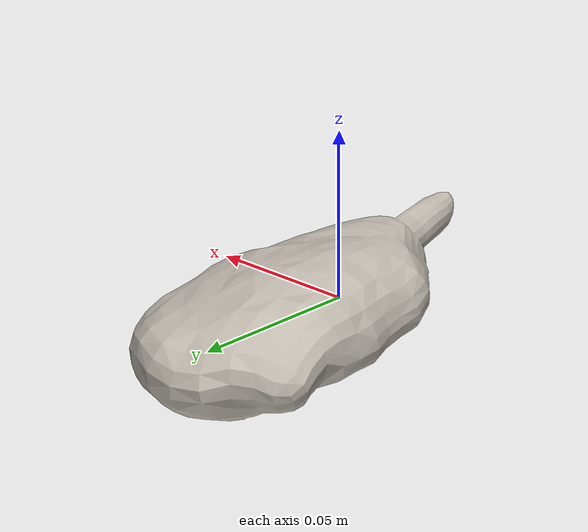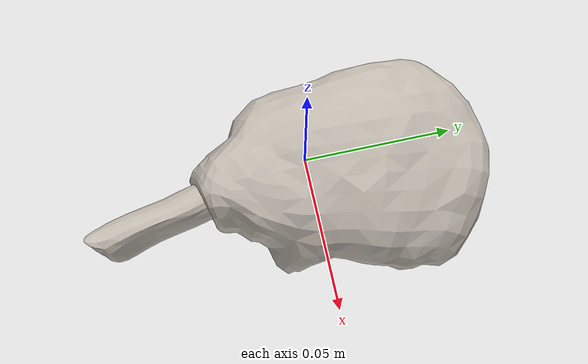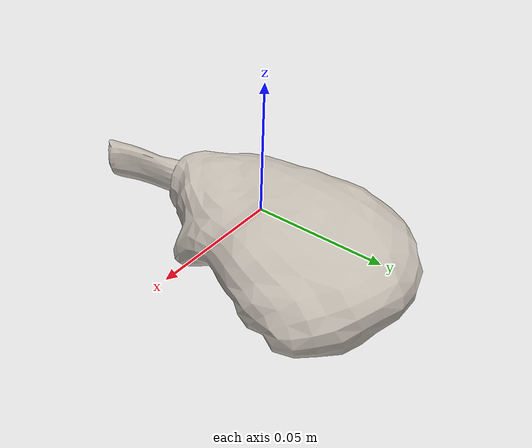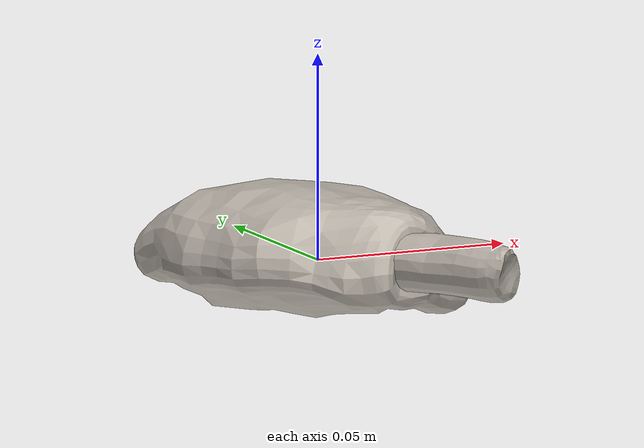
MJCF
<mujoco model="more_steak_21">
  <asset>
    <mesh file="visual/model_normalized_0.obj" name="model_normalized_0_vis" scale="0.12499999999999999 0.12499999999999999 0.12499999999999999" refquat="0.7071067811865477 -0.6532814824381884 0.0 0.2705980500730985"/>
    <mesh file="collision/model_normalized_collision_22.obj" name="model_normalized_collision_22._coll" scale="0.12499999999999999 0.12499999999999999 0.12499999999999999" refquat="0.7071067811865477 -0.6532814824381884 0.0 0.2705980500730985"/>
    <mesh file="collision/model_normalized_collision_23.obj" name="model_normalized_collision_23._coll" scale="0.12499999999999999 0.12499999999999999 0.12499999999999999" refquat="0.7071067811865477 -0.6532814824381884 0.0 0.2705980500730985"/>
    <mesh file="collision/model_normalized_collision_21.obj" name="model_normalized_collision_21._coll" scale="0.12499999999999999 0.12499999999999999 0.12499999999999999" refquat="0.7071067811865477 -0.6532814824381884 0.0 0.2705980500730985"/>
    <mesh file="collision/model_normalized_collision_20.obj" name="model_normalized_collision_20._coll" scale="0.12499999999999999 0.12499999999999999 0.12499999999999999" refquat="0.7071067811865477 -0.6532814824381884 0.0 0.2705980500730985"/>
    <mesh file="collision/model_normalized_collision_24.obj" name="model_normalized_collision_24._coll" scale="0.12499999999999999 0.12499999999999999 0.12499999999999999" refquat="0.7071067811865477 -0.6532814824381884 0.0 0.2705980500730985"/>
    <mesh file="collision/model_normalized_collision_30.obj" name="model_normalized_collision_30._coll" scale="0.12499999999999999 0.12499999999999999 0.12499999999999999" refquat="0.7071067811865477 -0.6532814824381884 0.0 0.2705980500730985"/>
    <mesh file="collision/model_normalized_collision_18.obj" name="model_normalized_collision_18._coll" scale="0.12499999999999999 0.12499999999999999 0.12499999999999999" refquat="0.7071067811865477 -0.6532814824381884 0.0 0.2705980500730985"/>
    <mesh file="collision/model_normalized_collision_19.obj" name="model_normalized_collision_19._coll" scale="0.12499999999999999 0.12499999999999999 0.12499999999999999" refquat="0.7071067811865477 -0.6532814824381884 0.0 0.2705980500730985"/>
    <mesh file="collision/model_normalized_collision_31.obj" name="model_normalized_collision_31._coll" scale="0.12499999999999999 0.12499999999999999 0.12499999999999999" refquat="0.7071067811865477 -0.6532814824381884 0.0 0.2705980500730985"/>
    <mesh file="collision/model_normalized_collision_25.obj" name="model_normalized_collision_25._coll" scale="0.12499999999999999 0.12499999999999999 0.12499999999999999" refquat="0.7071067811865477 -0.6532814824381884 0.0 0.2705980500730985"/>
    <mesh file="collision/model_normalized_collision_27.obj" name="model_normalized_collision_27._coll" scale="0.12499999999999999 0.12499999999999999 0.12499999999999999" refquat="0.7071067811865477 -0.6532814824381884 0.0 0.2705980500730985"/>
    <mesh file="collision/model_normalized_collision_26.obj" name="model_normalized_collision_26._coll" scale="0.12499999999999999 0.12499999999999999 0.12499999999999999" refquat="0.7071067811865477 -0.6532814824381884 0.0 0.2705980500730985"/>
    <mesh file="collision/model_normalized_collision_9.obj" name="model_normalized_collision_9._coll" scale="0.12499999999999999 0.12499999999999999 0.12499999999999999" refquat="0.7071067811865477 -0.6532814824381884 0.0 0.2705980500730985"/>
    <mesh file="collision/model_normalized_collision_8.obj" name="model_normalized_collision_8._coll" scale="0.12499999999999999 0.12499999999999999 0.12499999999999999" refquat="0.7071067811865477 -0.6532814824381884 0.0 0.2705980500730985"/>
    <mesh file="collision/model_normalized_collision_6.obj" name="model_normalized_collision_6._coll" scale="0.12499999999999999 0.12499999999999999 0.12499999999999999" refquat="0.7071067811865477 -0.6532814824381884 0.0 0.2705980500730985"/>
    <mesh file="collision/model_normalized_collision_7.obj" name="model_normalized_collision_7._coll" scale="0.12499999999999999 0.12499999999999999 0.12499999999999999" refquat="0.7071067811865477 -0.6532814824381884 0.0 0.2705980500730985"/>
    <mesh file="collision/model_normalized_collision_5.obj" name="model_normalized_collision_5._coll" scale="0.12499999999999999 0.12499999999999999 0.12499999999999999" refquat="0.7071067811865477 -0.6532814824381884 0.0 0.2705980500730985"/>
    <mesh file="collision/model_normalized_collision_4.obj" name="model_normalized_collision_4._coll" scale="0.12499999999999999 0.12499999999999999 0.12499999999999999" refquat="0.7071067811865477 -0.6532814824381884 0.0 0.2705980500730985"/>
    <mesh file="collision/model_normalized_collision_0.obj" name="model_normalized_collision_0._coll" scale="0.12499999999999999 0.12499999999999999 0.12499999999999999" refquat="0.7071067811865477 -0.6532814824381884 0.0 0.2705980500730985"/>
    <mesh file="collision/model_normalized_collision_1.obj" name="model_normalized_collision_1._coll" scale="0.12499999999999999 0.12499999999999999 0.12499999999999999" refquat="0.7071067811865477 -0.6532814824381884 0.0 0.2705980500730985"/>
    <mesh file="collision/model_normalized_collision_3.obj" name="model_normalized_collision_3._coll" scale="0.12499999999999999 0.12499999999999999 0.12499999999999999" refquat="0.7071067811865477 -0.6532814824381884 0.0 0.2705980500730985"/>
    <mesh file="collision/model_normalized_collision_2.obj" name="model_normalized_collision_2._coll" scale="0.12499999999999999 0.12499999999999999 0.12499999999999999" refquat="0.7071067811865477 -0.6532814824381884 0.0 0.2705980500730985"/>
    <mesh file="collision/model_normalized_collision_17.obj" name="model_normalized_collision_17._coll" scale="0.12499999999999999 0.12499999999999999 0.12499999999999999" refquat="0.7071067811865477 -0.6532814824381884 0.0 0.2705980500730985"/>
    <mesh file="collision/model_normalized_collision_16.obj" name="model_normalized_collision_16._coll" scale="0.12499999999999999 0.12499999999999999 0.12499999999999999" refquat="0.7071067811865477 -0.6532814824381884 0.0 0.2705980500730985"/>
    <mesh file="collision/model_normalized_collision_28.obj" name="model_normalized_collision_28._coll" scale="0.12499999999999999 0.12499999999999999 0.12499999999999999" refquat="0.7071067811865477 -0.6532814824381884 0.0 0.2705980500730985"/>
    <mesh file="collision/model_normalized_collision_14.obj" name="model_normalized_collision_14._coll" scale="0.12499999999999999 0.12499999999999999 0.12499999999999999" refquat="0.7071067811865477 -0.6532814824381884 0.0 0.2705980500730985"/>
    <mesh file="collision/model_normalized_collision_15.obj" name="model_normalized_collision_15._coll" scale="0.12499999999999999 0.12499999999999999 0.12499999999999999" refquat="0.7071067811865477 -0.6532814824381884 0.0 0.2705980500730985"/>
    <mesh file="collision/model_normalized_collision_29.obj" name="model_normalized_collision_29._coll" scale="0.12499999999999999 0.12499999999999999 0.12499999999999999" refquat="0.7071067811865477 -0.6532814824381884 0.0 0.2705980500730985"/>
    <mesh file="collision/model_normalized_collision_11.obj" name="model_normalized_collision_11._coll" scale="0.12499999999999999 0.12499999999999999 0.12499999999999999" refquat="0.7071067811865477 -0.6532814824381884 0.0 0.2705980500730985"/>
    <mesh file="collision/model_normalized_collision_10.obj" name="model_normalized_collision_10._coll" scale="0.12499999999999999 0.12499999999999999 0.12499999999999999" refquat="0.7071067811865477 -0.6532814824381884 0.0 0.2705980500730985"/>
    <mesh file="collision/model_normalized_collision_12.obj" name="model_normalized_collision_12._coll" scale="0.12499999999999999 0.12499999999999999 0.12499999999999999" refquat="0.7071067811865477 -0.6532814824381884 0.0 0.2705980500730985"/>
    <mesh file="collision/model_normalized_collision_13.obj" name="model_normalized_collision_13._coll" scale="0.12499999999999999 0.12499999999999999 0.12499999999999999" refquat="0.7071067811865477 -0.6532814824381884 0.0 0.2705980500730985"/>
    <texture type="2d" name="image0" file="visual/image0.png"/>
    <material name="Default_OBJ" texture="image0" specular="0.5" shininess="0.359999993"/>
  </asset>
  <worldbody>
  <body>
      <body name="object">
        <geom solimp="0.998 0.998 0.001" solref="0.001 1" density="100" friction="0.95 0.3 0.1" type="mesh" mesh="model_normalized_0_vis" conaffinity="0" contype="0" group="1" material="Default_OBJ"/>
        <geom solimp="0.998 0.998 0.001" solref="0.001 1" density="100" friction="0.95 0.3 0.1" type="mesh" mesh="model_normalized_collision_22._coll" group="0" rgba="0.8 0.8 0.8 0.0"/>
        <geom solimp="0.998 0.998 0.001" solref="0.001 1" density="100" friction="0.95 0.3 0.1" type="mesh" mesh="model_normalized_collision_23._coll" group="0" rgba="0.8 0.8 0.8 0.0"/>
        <geom solimp="0.998 0.998 0.001" solref="0.001 1" density="100" friction="0.95 0.3 0.1" type="mesh" mesh="model_normalized_collision_21._coll" group="0" rgba="0.8 0.8 0.8 0.0"/>
        <geom solimp="0.998 0.998 0.001" solref="0.001 1" density="100" friction="0.95 0.3 0.1" type="mesh" mesh="model_normalized_collision_20._coll" group="0" rgba="0.8 0.8 0.8 0.0"/>
        <geom solimp="0.998 0.998 0.001" solref="0.001 1" density="100" friction="0.95 0.3 0.1" type="mesh" mesh="model_normalized_collision_24._coll" group="0" rgba="0.8 0.8 0.8 0.0"/>
        <geom solimp="0.998 0.998 0.001" solref="0.001 1" density="100" friction="0.95 0.3 0.1" type="mesh" mesh="model_normalized_collision_30._coll" group="0" rgba="0.8 0.8 0.8 0.0"/>
        <geom solimp="0.998 0.998 0.001" solref="0.001 1" density="100" friction="0.95 0.3 0.1" type="mesh" mesh="model_normalized_collision_18._coll" group="0" rgba="0.8 0.8 0.8 0.0"/>
        <geom solimp="0.998 0.998 0.001" solref="0.001 1" density="100" friction="0.95 0.3 0.1" type="mesh" mesh="model_normalized_collision_19._coll" group="0" rgba="0.8 0.8 0.8 0.0"/>
        <geom solimp="0.998 0.998 0.001" solref="0.001 1" density="100" friction="0.95 0.3 0.1" type="mesh" mesh="model_normalized_collision_31._coll" group="0" rgba="0.8 0.8 0.8 0.0"/>
        <geom solimp="0.998 0.998 0.001" solref="0.001 1" density="100" friction="0.95 0.3 0.1" type="mesh" mesh="model_normalized_collision_25._coll" group="0" rgba="0.8 0.8 0.8 0.0"/>
        <geom solimp="0.998 0.998 0.001" solref="0.001 1" density="100" friction="0.95 0.3 0.1" type="mesh" mesh="model_normalized_collision_27._coll" group="0" rgba="0.8 0.8 0.8 0.0"/>
        <geom solimp="0.998 0.998 0.001" solref="0.001 1" density="100" friction="0.95 0.3 0.1" type="mesh" mesh="model_normalized_collision_26._coll" group="0" rgba="0.8 0.8 0.8 0.0"/>
        <geom solimp="0.998 0.998 0.001" solref="0.001 1" density="100" friction="0.95 0.3 0.1" type="mesh" mesh="model_normalized_collision_9._coll" group="0" rgba="0.8 0.8 0.8 0.0"/>
        <geom solimp="0.998 0.998 0.001" solref="0.001 1" density="100" friction="0.95 0.3 0.1" type="mesh" mesh="model_normalized_collision_8._coll" group="0" rgba="0.8 0.8 0.8 0.0"/>
        <geom solimp="0.998 0.998 0.001" solref="0.001 1" density="100" friction="0.95 0.3 0.1" type="mesh" mesh="model_normalized_collision_6._coll" group="0" rgba="0.8 0.8 0.8 0.0"/>
        <geom solimp="0.998 0.998 0.001" solref="0.001 1" density="100" friction="0.95 0.3 0.1" type="mesh" mesh="model_normalized_collision_7._coll" group="0" rgba="0.8 0.8 0.8 0.0"/>
        <geom solimp="0.998 0.998 0.001" solref="0.001 1" density="100" friction="0.95 0.3 0.1" type="mesh" mesh="model_normalized_collision_5._coll" group="0" rgba="0.8 0.8 0.8 0.0"/>
        <geom solimp="0.998 0.998 0.001" solref="0.001 1" density="100" friction="0.95 0.3 0.1" type="mesh" mesh="model_normalized_collision_4._coll" group="0" rgba="0.8 0.8 0.8 0.0"/>
        <geom solimp="0.998 0.998 0.001" solref="0.001 1" density="100" friction="0.95 0.3 0.1" type="mesh" mesh="model_normalized_collision_0._coll" group="0" rgba="0.8 0.8 0.8 0.0"/>
        <geom solimp="0.998 0.998 0.001" solref="0.001 1" density="100" friction="0.95 0.3 0.1" type="mesh" mesh="model_normalized_collision_1._coll" group="0" rgba="0.8 0.8 0.8 0.0"/>
        <geom solimp="0.998 0.998 0.001" solref="0.001 1" density="100" friction="0.95 0.3 0.1" type="mesh" mesh="model_normalized_collision_3._coll" group="0" rgba="0.8 0.8 0.8 0.0"/>
        <geom solimp="0.998 0.998 0.001" solref="0.001 1" density="100" friction="0.95 0.3 0.1" type="mesh" mesh="model_normalized_collision_2._coll" group="0" rgba="0.8 0.8 0.8 0.0"/>
        <geom solimp="0.998 0.998 0.001" solref="0.001 1" density="100" friction="0.95 0.3 0.1" type="mesh" mesh="model_normalized_collision_17._coll" group="0" rgba="0.8 0.8 0.8 0.0"/>
        <geom solimp="0.998 0.998 0.001" solref="0.001 1" density="100" friction="0.95 0.3 0.1" type="mesh" mesh="model_normalized_collision_16._coll" group="0" rgba="0.8 0.8 0.8 0.0"/>
        <geom solimp="0.998 0.998 0.001" solref="0.001 1" density="100" friction="0.95 0.3 0.1" type="mesh" mesh="model_normalized_collision_28._coll" group="0" rgba="0.8 0.8 0.8 0.0"/>
        <geom solimp="0.998 0.998 0.001" solref="0.001 1" density="100" friction="0.95 0.3 0.1" type="mesh" mesh="model_normalized_collision_14._coll" group="0" rgba="0.8 0.8 0.8 0.0"/>
        <geom solimp="0.998 0.998 0.001" solref="0.001 1" density="100" friction="0.95 0.3 0.1" type="mesh" mesh="model_normalized_collision_15._coll" group="0" rgba="0.8 0.8 0.8 0.0"/>
        <geom solimp="0.998 0.998 0.001" solref="0.001 1" density="100" friction="0.95 0.3 0.1" type="mesh" mesh="model_normalized_collision_29._coll" group="0" rgba="0.8 0.8 0.8 0.0"/>
        <geom solimp="0.998 0.998 0.001" solref="0.001 1" density="100" friction="0.95 0.3 0.1" type="mesh" mesh="model_normalized_collision_11._coll" group="0" rgba="0.8 0.8 0.8 0.0"/>
        <geom solimp="0.998 0.998 0.001" solref="0.001 1" density="100" friction="0.95 0.3 0.1" type="mesh" mesh="model_normalized_collision_10._coll" group="0" rgba="0.8 0.8 0.8 0.0"/>
        <geom solimp="0.998 0.998 0.001" solref="0.001 1" density="100" friction="0.95 0.3 0.1" type="mesh" mesh="model_normalized_collision_12._coll" group="0" rgba="0.8 0.8 0.8 0.0"/>
        <geom solimp="0.998 0.998 0.001" solref="0.001 1" density="100" friction="0.95 0.3 0.1" type="mesh" mesh="model_normalized_collision_13._coll" group="0" rgba="0.8 0.8 0.8 0.0"/>
      </body>
      <site rgba="0 0 0 0" size="0.005" pos="0.006522913397287454 -0.0038167644667095875 -0.021421455683559437" name="bottom_site"/>
      <site rgba="0 0 0 0" size="0.005" pos="0.006522913397287454 -0.0038167644667095875 0.01744222511671513" name="top_site"/>
      <site rgba="0 0 0 0" size="0.005" pos="0.0426184137572257 0.06313524524382338 -0.0019896152834221535" name="horizontal_radius_site"/>
    </body>
    </worldbody>
</mujoco>
